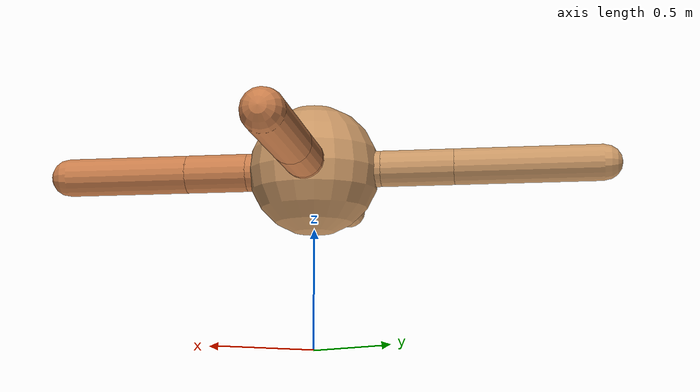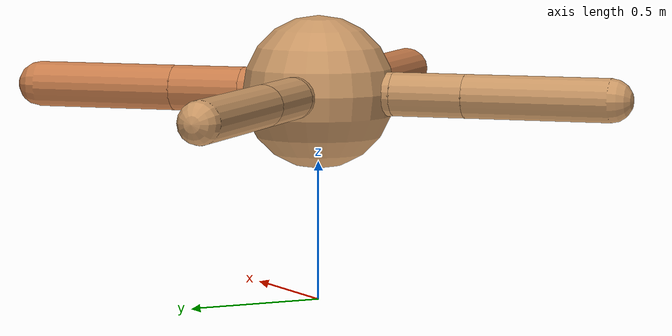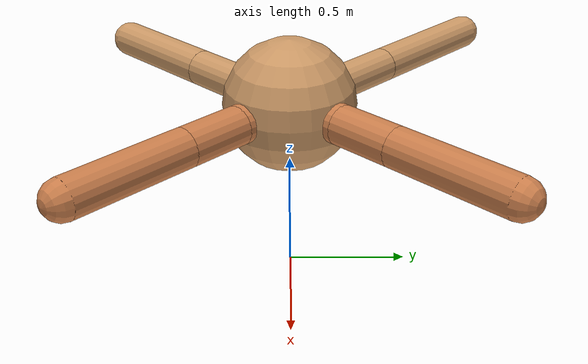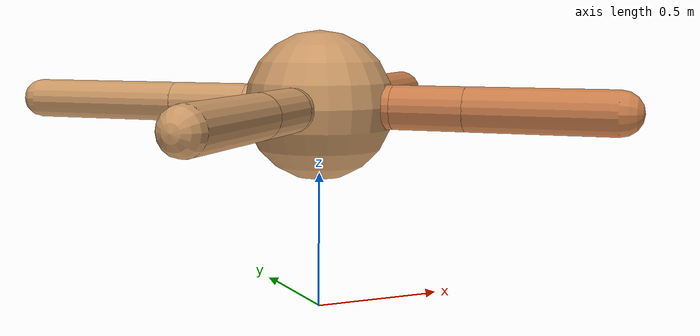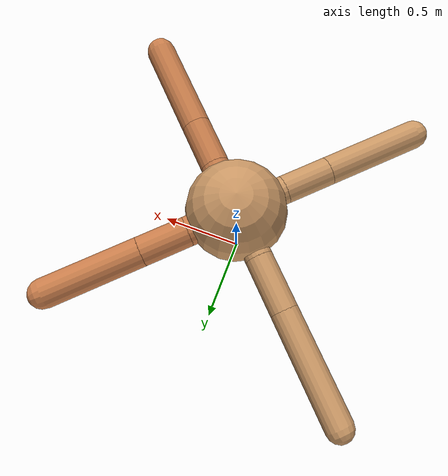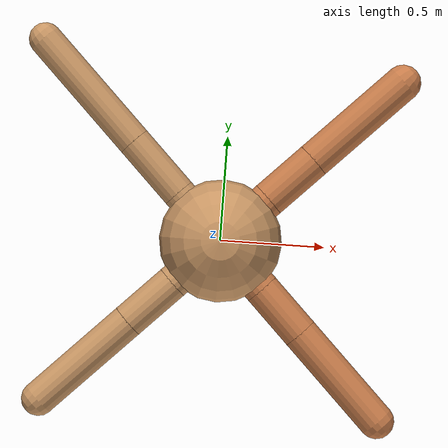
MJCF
<?xml version="1.0" ?>
<mujoco model="ant">

	<compiler angle="degree" coordinate="local" inertiafromgeom="true"/>

	<option integrator="RK4" timestep="0.01"/>

	<custom>

		<numeric data="0.0 0.0 0.55 1.0 0.0 0.0 0.0 0.0 1.0 0.0 -1.0 0.0 -1.0 0.0 1.0" name="init_qpos"/>

	</custom>

	<default>

		<joint armature="1" damping="1" limited="true"/>

		<geom conaffinity="0" condim="3" density="5.0" friction="1.5 0.1 0.1" margin="0.01" rgba="0.8 0.6 0.4 1"/>

	</default>

	<worldbody>

		<body name="torso" pos="0 0 0.75">

			<geom name="torso_geom" pos="0 0 0" size="0.27411677026376047" type="sphere"/>

			<!--joint armature="0" damping="0" limited="false" margin="0.01" name="root" pos="0 0 0" type="free"/-->

			<body name="front_left_leg" pos="0 0 0">

				<geom fromto="0 0 0 0.2 0.2 0" name="aux_1_geom" size="0.08183484291322714" type="capsule" rgba=".8 .5 .3 1"/>

				<body name="aux_1" pos="0.2 0.2 0">

					<joint axis="0 0 1" name="hip_1" pos="0.0 0.0 0.0" range="-40 40" type="hinge"/>

					<geom fromto="0 0 0 0.18710466878698476 0.18710466878698476 0" name="left_leg_geom" size="0.08183484291322714" type="capsule" rgba=".8 .5 .3 1"/>

					<body pos="0.18710466878698476 0.18710466878698476 0" name="front_left_foot">

						<joint axis="-1 1 0" name="ankle_1" pos="0.0 0.0 0.0" range="30 100" type="hinge"/>

						<geom fromto="0 0 0 0.3742093375739695 0.3742093375739695 0" name="left_ankle_geom" size="0.08183484291322714" type="capsule" rgba=".8 .5 .3 1"/>

					</body>

				</body>

			</body>

			<body name="front_right_leg" pos="0 0 0">

				<geom fromto="0 0 0 -0.2 0.2 0" name="aux_2_geom" size="0.07465928929166898" type="capsule"/>

				<body name="aux_2" pos="-0.2 0.2 0">

					<joint axis="0 0 1" name="hip_2" pos="0.0 0.0 0.0" range="-40 40" type="hinge"/>

					<geom fromto="0 0 0 -0.21403961207428657 0.21403961207428657 0" name="right_leg_geom" size="0.07465928929166898" type="capsule"/>

					<body pos="-0.21403961207428657 0.21403961207428657 0" name="front_right_foot">

						<joint axis="1 1 0" name="ankle_2" pos="0.0 0.0 0.0" range="-100 -30" type="hinge"/>

						<geom fromto="0 0 0 -0.42807922414857313 0.42807922414857313 0" name="right_ankle_geom" size="0.07465928929166898" type="capsule"/>

					</body>

				</body>

			</body>

			<body name="left_back_leg" pos="0 0 0">

				<geom fromto="0 0 0 -0.2 -0.2 0" name="aux_3_geom" size="0.07799338555990903" type="capsule"/>

				<body name="aux_3" pos="-0.2 -0.2 0">

					<joint axis="0 0 1" name="hip_3" pos="0.0 0.0 0.0" range="-40 40" type="hinge"/>

					<geom fromto="0 0 0 -0.18617450690673937 -0.18617450690673937 0" name="back_leg_geom" size="0.07799338555990903" type="capsule"/>

					<body pos="-0.18617450690673937 -0.18617450690673937 0" name="left_back_foot">

						<joint axis="-1 1 0" name="ankle_3" pos="0.0 0.0 0.0" range="-100 -30" type="hinge"/>

						<geom fromto="0 0 0 -0.37234901381347874 -0.37234901381347874 0" name="third_ankle_geom" size="0.07799338555990903" type="capsule"/>

					</body>

				</body>

			</body>

			<body name="right_back_leg" pos="0 0 0">

				<geom fromto="0 0 0 0.2 -0.2 0" name="aux_4_geom" size="0.07971639653713634" type="capsule" rgba=".8 .5 .3 1"/>

				<body name="aux_4" pos="0.2 -0.2 0">

					<joint axis="0 0 1" name="hip_4" pos="0.0 0.0 0.0" range="-40 40" type="hinge"/>

					<geom fromto="0 0 0 0.1838767827417661 -0.1838767827417661 0" name="rightback_leg_geom" size="0.07971639653713634" type="capsule" rgba=".8 .5 .3 1"/>

					<body pos="0.1838767827417661 -0.1838767827417661 0" name="right_back_foot">

						<joint axis="1 1 0" name="ankle_4" pos="0.0 0.0 0.0" range="30 100" type="hinge"/>

						<geom fromto="0 0 0 0.3677535654835322 -0.3677535654835322 0" name="fourth_ankle_geom" size="0.07971639653713634" type="capsule" rgba=".8 .5 .3 1"/>

					</body>

				</body>

			</body>

		</body>

	</worldbody>

	<actuator>

		<motor ctrllimited="true" ctrlrange="-1.0 1.0" joint="hip_4" gear="150"/>

		<motor ctrllimited="true" ctrlrange="-1.0 1.0" joint="ankle_4" gear="150"/>

		<motor ctrllimited="true" ctrlrange="-1.0 1.0" joint="hip_1" gear="150"/>

		<motor ctrllimited="true" ctrlrange="-1.0 1.0" joint="ankle_1" gear="150"/>

		<motor ctrllimited="true" ctrlrange="-1.0 1.0" joint="hip_2" gear="150"/>

		<motor ctrllimited="true" ctrlrange="-1.0 1.0" joint="ankle_2" gear="150"/>

		<motor ctrllimited="true" ctrlrange="-1.0 1.0" joint="hip_3" gear="150"/>

		<motor ctrllimited="true" ctrlrange="-1.0 1.0" joint="ankle_3" gear="150"/>

	</actuator>

</mujoco>
